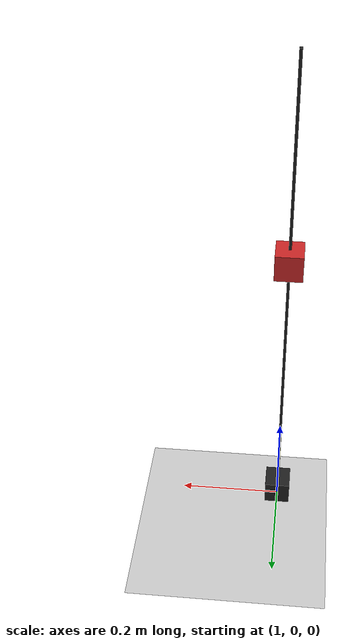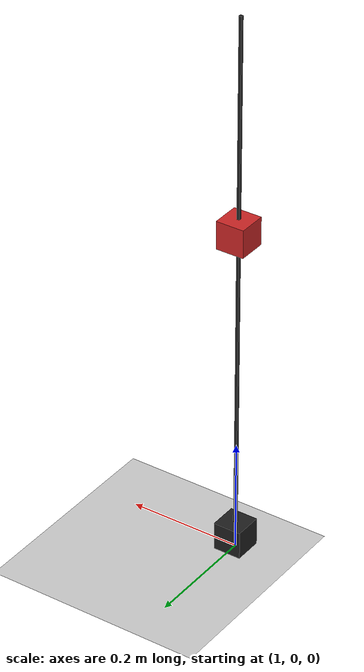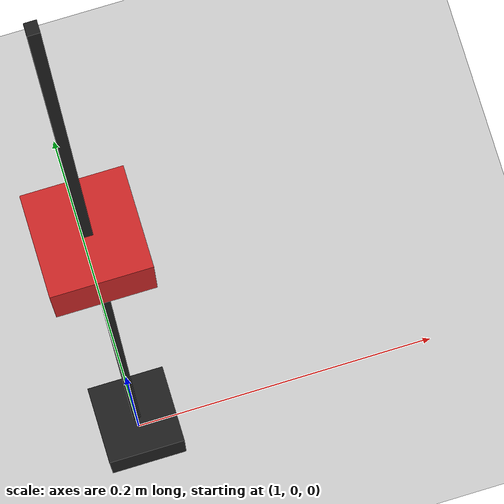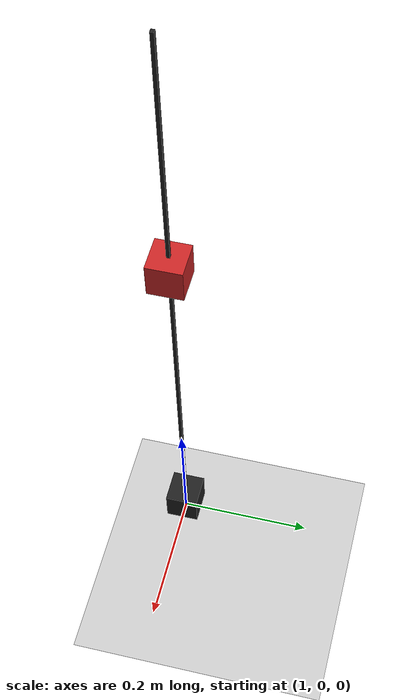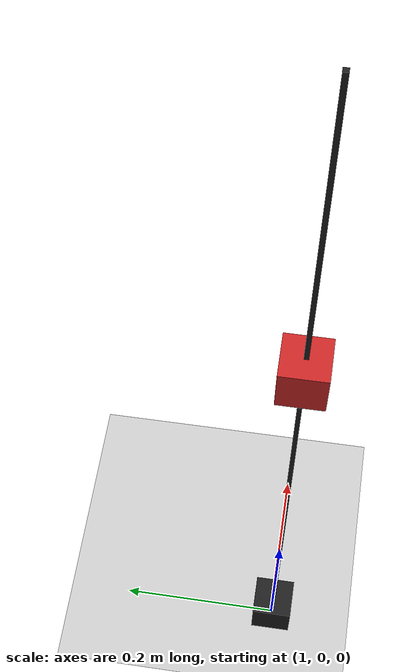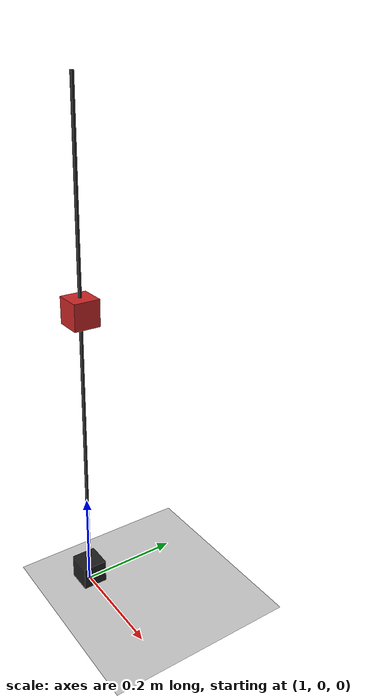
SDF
<sdf version="1.7">
 <world name="mysky">
  <scene>
   <ambient>0.75 0.75 0.75 1</ambient>
   <background>0.5 0.5 0.5 1</background>
   <sky><clouds><speed>10</speed></clouds></sky>
   <shadows>1</shadows>
  </scene>
  <light name="sun" type="directional">
   <pose>0 0 10 0 -0 0</pose>
   <diffuse>0.8 0.8 0.8 1</diffuse>
   <specular>0.2 0.2 0.2 1</specular>
   <attenuation>
    <range>1000</range>
    <constant>0.9</constant>
    <linear>0.01</linear>
    <quadratic>0.001</quadratic>
   </attenuation>
   <direction>-0.5 0.1 -0.9</direction>
   <spot><inner_angle>0</inner_angle><outer_angle>0</outer_angle><falloff>0</falloff></spot>
  </light>
  <model name="ground_plane">
   <static>1</static>
   <link name="link">
    <collision name="collision">
     <geometry><plane><normal>0 0 1</normal><size>100 100</size></plane></geometry>
     <surface>
      <contact><collide_bitmask>65535</collide_bitmask></contact>
      <friction><ode><mu>100</mu><mu2>50</mu2></ode></friction>
     </surface>
    </collision>
    <visual name="visual">
     <cast_shadows>0</cast_shadows>
     <geometry><plane><normal>0 0 1</normal><size>100 100</size></plane></geometry>
     <material>
      <script><uri>file://media/materials/scripts/gazebo.material</uri><name>Gazebo/Grey</name></script>
     </material>
    </visual>
   </link>
  </model>
  <gravity>0 0 -9.8</gravity>
  <magnetic_field>6e-06 2.3e-05 -4.2e-05</magnetic_field>
  <atmosphere type="adiabatic"/>
  <physics type="ode">
   <max_step_size>0.001</max_step_size>
   <real_time_factor>1</real_time_factor>
   <real_time_update_rate>1000</real_time_update_rate>
  </physics>
  <spherical_coordinates>
   <surface_model>EARTH_WGS84</surface_model>
   <latitude_deg>0</latitude_deg>
   <longitude_deg>0</longitude_deg>
   <elevation>0</elevation>
   <heading_deg>0</heading_deg>
  </spherical_coordinates>
  <model name="Rpole60">
   <link name="base">
    <inertial>
     <pose>0 0 0.305682 0 -0 0</pose>
     <mass>1.1</mass>
     <inertia>
      <ixx>0.0892926</ixx>
      <ixy>0</ixy>
      <ixz>0</ixz>
      <iyy>0.0892926</iyy>
      <iyz>0</iyz>
      <izz>0.003</izz>
     </inertia>
    </inertial>
    <collision name="base_collision"><geometry><box><size>0.05 0.05 0.05</size></box></geometry></collision>
    <collision name="base_fixed_joint_lump__pole_collision_1">
     <pose>0 0 0.4875 0 -0 0</pose>
     <geometry><box><size>0.005 0.005 0.925</size></box></geometry>
    </collision>
    <collision name="base_fixed_joint_lump__top_collision_2">
     <pose>0 0 0.575 0 -0 0</pose>
     <geometry><box><size>0.05 0.05 0.05</size></box></geometry>
    </collision>
    <visual name="base_visual">
     <geometry><box><size>0.05 0.05 0.05</size></box></geometry>
     <material>
      <script><name>Gazebo/Black</name><uri>file://media/materials/scripts/gazebo.material</uri></script>
     </material>
    </visual>
    <visual name="base_fixed_joint_lump__pole_visual_1">
     <pose>0 0 0.4875 0 -0 0</pose>
     <geometry><box><size>0.005 0.005 0.925</size></box></geometry>
     <material>
      <script><name>Gazebo/Black</name><uri>file://media/materials/scripts/gazebo.material</uri></script>
     </material>
    </visual>
    <visual name="base_fixed_joint_lump__top_visual_2">
     <pose>0 0 0.575 0 -0 0</pose>
     <geometry><box><size>0.05 0.05 0.05</size></box></geometry>
     <material>
      <script><name>Gazebo/Red</name><uri>file://media/materials/scripts/gazebo.material</uri></script>
     </material>
    </visual>
   </link>
   <pose>0.999987 1e-06 0.025004 -1e-06 -0.000539 -3e-05</pose>
  </model>
 </world>
</sdf>
